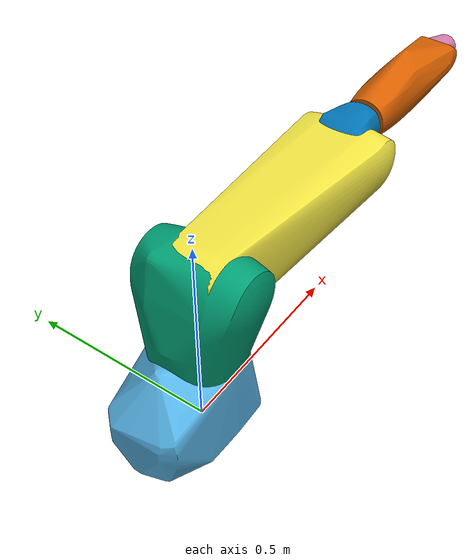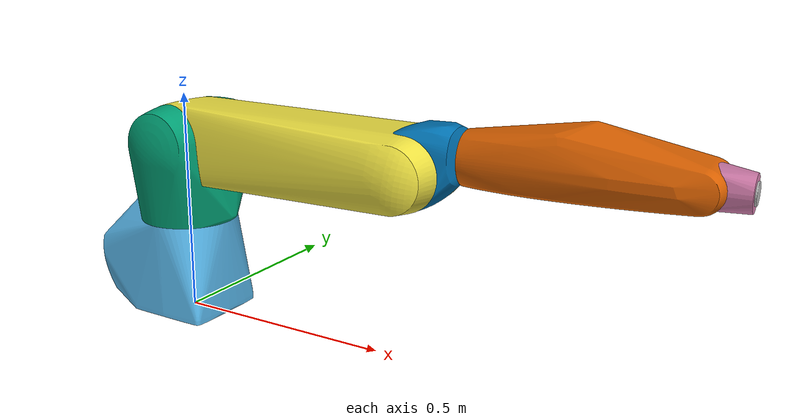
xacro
<?xml version="1.0"?>
<robot xmlns:xacro="http://www.ros.org/wiki/xacro" name="kr_10_r1100_sixx">
  <xacro:arg name="prefix" default=""/>
  <xacro:include filename="$(find kuka_robot_descriptions)/urdf/kr_10_r1100_sixx_macro.xacro"/>
  <link name="world"/>
  <xacro:kr_10_r1100_sixx prefix="$(arg prefix)" parent="world">
    <origin xyz="0 0 0" rpy="0 0 0"/>
  </xacro:kr_10_r1100_sixx>
</robot>

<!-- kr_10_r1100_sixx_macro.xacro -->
<robot xmlns:xacro="http://www.ros.org/wiki/xacro">

  <!-- KUKA KR 10 R1100 sixx - generated from RoboDK .robot -->
  <xacro:macro name="kr_10_r1100_sixx" params="prefix parent *origin">

    <material name="${prefix}kr_10_r1100_sixx_grey"><color rgba="0.85 0.85 0.85 1.0"/></material>

    <joint name="${prefix}base_joint" type="fixed">
      <xacro:insert_block name="origin"/>
      <parent link="${parent}"/>
      <child link="${prefix}base_link"/>
    </joint>

    <link name="${prefix}base_link">
      <visual>
        <origin xyz="0 0 0" rpy="0 0 0"/>
        <geometry>
          <mesh filename="package://kuka_robot_descriptions/meshes/kr_10_r1100_sixx/visual/base_link.dae" scale="0.001 0.001 0.001"/>
        </geometry>
      </visual>
      <collision>
        <origin xyz="0 0 0" rpy="0 0 0"/>
        <geometry>
          <mesh filename="package://kuka_robot_descriptions/meshes/kr_10_r1100_sixx/collision/base_link.stl" scale="0.001 0.001 0.001"/>
        </geometry>
      </collision>
    </link>

    <link name="${prefix}link_1">
      <visual>
        <origin xyz="0 0 0" rpy="0 0 0"/>
        <geometry>
          <mesh filename="package://kuka_robot_descriptions/meshes/kr_10_r1100_sixx/visual/link_1.dae" scale="0.001 0.001 0.001"/>
        </geometry>
      </visual>
      <collision>
        <origin xyz="0 0 0" rpy="0 0 0"/>
        <geometry>
          <mesh filename="package://kuka_robot_descriptions/meshes/kr_10_r1100_sixx/collision/link_1.stl" scale="0.001 0.001 0.001"/>
        </geometry>
      </collision>
    </link>

    <link name="${prefix}link_2">
      <visual>
        <origin xyz="0 0 0" rpy="0 0 0"/>
        <geometry>
          <mesh filename="package://kuka_robot_descriptions/meshes/kr_10_r1100_sixx/visual/link_2.dae" scale="0.001 0.001 0.001"/>
        </geometry>
      </visual>
      <collision>
        <origin xyz="0 0 0" rpy="0 0 0"/>
        <geometry>
          <mesh filename="package://kuka_robot_descriptions/meshes/kr_10_r1100_sixx/collision/link_2.stl" scale="0.001 0.001 0.001"/>
        </geometry>
      </collision>
    </link>

    <link name="${prefix}link_3">
      <visual>
        <origin xyz="0 0 0" rpy="0 0 0"/>
        <geometry>
          <mesh filename="package://kuka_robot_descriptions/meshes/kr_10_r1100_sixx/visual/link_3.dae" scale="0.001 0.001 0.001"/>
        </geometry>
      </visual>
      <collision>
        <origin xyz="0 0 0" rpy="0 0 0"/>
        <geometry>
          <mesh filename="package://kuka_robot_descriptions/meshes/kr_10_r1100_sixx/collision/link_3.stl" scale="0.001 0.001 0.001"/>
        </geometry>
      </collision>
    </link>

    <link name="${prefix}link_4">
      <visual>
        <origin xyz="0 0 0" rpy="0 0 0"/>
        <geometry>
          <mesh filename="package://kuka_robot_descriptions/meshes/kr_10_r1100_sixx/visual/link_4.dae" scale="0.001 0.001 0.001"/>
        </geometry>
      </visual>
      <collision>
        <origin xyz="0 0 0" rpy="0 0 0"/>
        <geometry>
          <mesh filename="package://kuka_robot_descriptions/meshes/kr_10_r1100_sixx/collision/link_4.stl" scale="0.001 0.001 0.001"/>
        </geometry>
      </collision>
    </link>

    <link name="${prefix}link_5">
      <visual>
        <origin xyz="0 0 0" rpy="0 0 0"/>
        <geometry>
          <mesh filename="package://kuka_robot_descriptions/meshes/kr_10_r1100_sixx/visual/link_5.dae" scale="0.001 0.001 0.001"/>
        </geometry>
      </visual>
      <collision>
        <origin xyz="0 0 0" rpy="0 0 0"/>
        <geometry>
          <mesh filename="package://kuka_robot_descriptions/meshes/kr_10_r1100_sixx/collision/link_5.stl" scale="0.001 0.001 0.001"/>
        </geometry>
      </collision>
    </link>

    <link name="${prefix}link_6">
      <visual>
        <origin xyz="0 0 0" rpy="0 0 0"/>
        <geometry>
          <mesh filename="package://kuka_robot_descriptions/meshes/kr_10_r1100_sixx/visual/link_6.dae" scale="0.001 0.001 0.001"/>
        </geometry>
      </visual>
      <collision>
        <origin xyz="0 0 0" rpy="0 0 0"/>
        <geometry>
          <mesh filename="package://kuka_robot_descriptions/meshes/kr_10_r1100_sixx/collision/link_6.stl" scale="0.001 0.001 0.001"/>
        </geometry>
      </collision>
    </link>

    <joint name="${prefix}joint_1" type="revolute">
      <parent link="${prefix}base_link"/>
      <child link="${prefix}link_1"/>
      <origin xyz="0 0 0.4" rpy="0 -0 0"/>
      <axis xyz="0 0 1"/>
      <limit lower="-2.9670597" upper="2.9670597" effort="100.0" velocity="3.1416"/>
    </joint>

    <joint name="${prefix}joint_2" type="revolute">
      <parent link="${prefix}link_1"/>
      <child link="${prefix}link_2"/>
      <origin xyz="0.025 0 0" rpy="-1.5707963 -0 0"/>
      <axis xyz="0 0 1"/>
      <limit lower="-3.3161256" upper="0.78539816" effort="100.0" velocity="3.1416"/>
    </joint>

    <joint name="${prefix}joint_3" type="revolute">
      <parent link="${prefix}link_2"/>
      <child link="${prefix}link_3"/>
      <origin xyz="0.56 0 0" rpy="0 -0 -1.5707963"/>
      <axis xyz="0 0 1"/>
      <limit lower="-2.0943951" upper="2.7227136" effort="100.0" velocity="3.1416"/>
    </joint>

    <joint name="${prefix}joint_4" type="revolute">
      <parent link="${prefix}link_3"/>
      <child link="${prefix}link_4"/>
      <origin xyz="0.035 0.515 3.1534655e-17" rpy="-1.5707963 -0 0"/>
      <axis xyz="0 0 1"/>
      <limit lower="-3.2288591" upper="3.2288591" effort="100.0" velocity="3.1416"/>
    </joint>

    <joint name="${prefix}joint_5" type="revolute">
      <parent link="${prefix}link_4"/>
      <child link="${prefix}link_5"/>
      <origin xyz="0 0 0" rpy="1.5707963 -0 0"/>
      <axis xyz="0 0 1"/>
      <limit lower="-2.0943951" upper="2.0943951" effort="100.0" velocity="3.1416"/>
    </joint>

    <joint name="${prefix}joint_6" type="revolute">
      <parent link="${prefix}link_5"/>
      <child link="${prefix}link_6"/>
      <origin xyz="0 0.08 4.8985872e-18" rpy="1.5707963 1.2246468e-16 3.1415927"/>
      <axis xyz="0 0 1"/>
      <limit lower="-6.1086524" upper="6.1086524" effort="100.0" velocity="3.1416"/>
    </joint>

    <link name="${prefix}flange"/>
    <joint name="${prefix}link_6-flange" type="fixed">
      <parent link="${prefix}link_6"/>
      <child link="${prefix}flange"/>
      <origin xyz="0 0 0" rpy="0 0 0"/>
    </joint>
    <link name="${prefix}tool0"/>
    <joint name="${prefix}flange-tool0" type="fixed">
      <parent link="${prefix}flange"/>
      <child link="${prefix}tool0"/>
      <origin xyz="0 0 0" rpy="0 0 0"/>
    </joint>

  </xacro:macro>
</robot>
